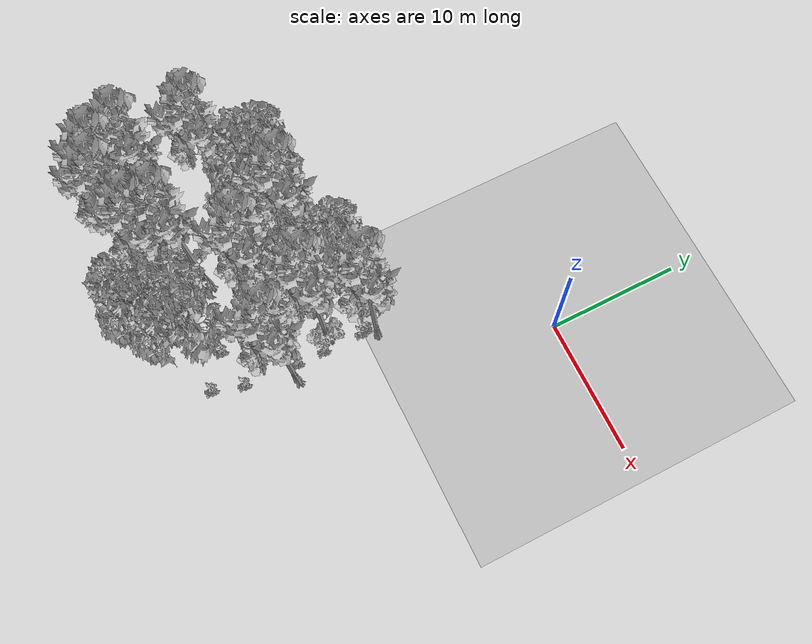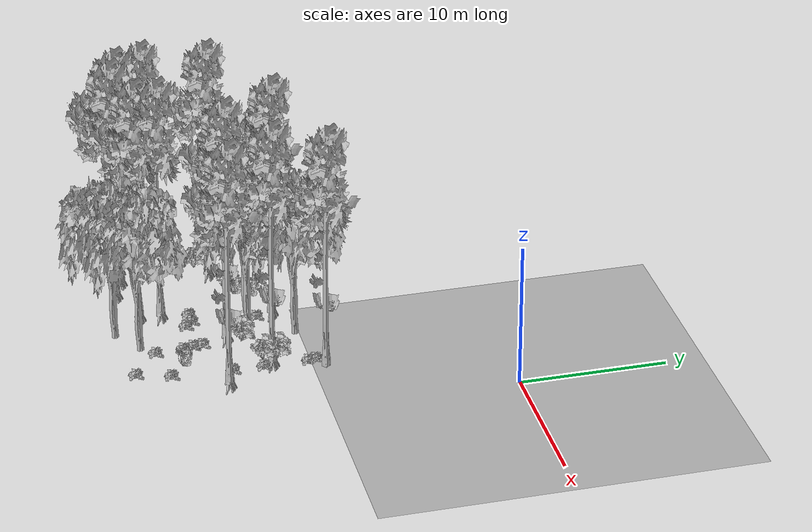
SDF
<sdf version="1.7">
 <world name="default">
  <model name="ground_plane">
   <static>1</static>
   <link name="link">
    <collision name="collision">
     <pose>-50 0 0 0 -0 0</pose>
     <geometry><plane><normal>0 0 1</normal><size>80 80</size></plane></geometry>
     <surface><contact><ode><min_depth>0.01</min_depth><max_vel>0</max_vel></ode></contact></surface>
    </collision>
    <visual name="grass">
     <cast_shadows>0</cast_shadows>
     <geometry>
      <mesh>
       <scale>0.46714285714285714 0.46714285714285714 0.1</scale>
       <uri>file://grass_plane/meshes/grass_plane.dae</uri>
      </mesh>
     </geometry>
    </visual>
   </link>
  </model>
  <model name="Tree 1">
   <static>1</static>
   <pose>-20.00631564012497 -21.219108205197983 0 1.57079 -0 0</pose>
   <link name="link">
    <collision name="collision">
     <geometry><mesh><scale>3.5 5 3.5</scale><uri>model://tree_9/meshes/tree_9.obj</uri></mesh></geometry>
    </collision>
    <visual name="visual">
     <geometry><mesh><scale>3.5 5 3.5</scale><uri>model://tree_9/meshes/tree_9.obj</uri></mesh></geometry>
    </visual>
   </link>
  </model>
  <model name="Tree 27">
   <static>1</static>
   <pose>-19.1331456412655 -16.951237500059335 0 1.57079 -0 0</pose>
   <link name="link">
    <collision name="collision">
     <geometry><mesh><scale>3.5 5 3.5</scale><uri>model://tree_9/meshes/tree_9.obj</uri></mesh></geometry>
    </collision>
    <visual name="visual">
     <geometry><mesh><scale>3.5 5 3.5</scale><uri>model://tree_9/meshes/tree_9.obj</uri></mesh></geometry>
    </visual>
   </link>
  </model>
  <model name="Tree 63">
   <static>1</static>
   <pose>-18.331179288431503 -14.462278779651943 0 1.57079 -0 0</pose>
   <link name="link">
    <collision name="collision">
     <geometry><mesh><scale>3.5 5 3.5</scale><uri>model://tree_2/meshes/tree_2.obj</uri></mesh></geometry>
    </collision>
    <visual name="visual">
     <geometry><mesh><scale>3.5 5 3.5</scale><uri>model://tree_2/meshes/tree_2.obj</uri></mesh></geometry>
    </visual>
   </link>
  </model>
  <model name="Tree 120">
   <static>1</static>
   <pose>-19.40444685977066 -23.045255767397617 0 1.57079 -0 0</pose>
   <link name="link">
    <collision name="collision">
     <geometry><mesh><scale>3.5 5 3.5</scale><uri>model://tree_9/meshes/tree_9.obj</uri></mesh></geometry>
    </collision>
    <visual name="visual">
     <geometry><mesh><scale>3.5 5 3.5</scale><uri>model://tree_9/meshes/tree_9.obj</uri></mesh></geometry>
    </visual>
   </link>
  </model>
  <model name="Tree 126">
   <static>1</static>
   <pose>-5.126110389023971 -11.750447258831258 0 1.57079 -0 0</pose>
   <link name="link">
    <collision name="collision">
     <geometry><mesh><scale>3.5 5 3.5</scale><uri>model://tree_9/meshes/tree_9.obj</uri></mesh></geometry>
    </collision>
    <visual name="visual">
     <geometry><mesh><scale>3.5 5 3.5</scale><uri>model://tree_9/meshes/tree_9.obj</uri></mesh></geometry>
    </visual>
   </link>
  </model>
  <model name="Tree 169">
   <static>1</static>
   <pose>-4.711539484235999 -18.272346032408073 0 1.57079 -0 0</pose>
   <link name="link">
    <collision name="collision">
     <geometry><mesh><scale>3.5 5 3.5</scale><uri>model://tree_9/meshes/tree_9.obj</uri></mesh></geometry>
    </collision>
    <visual name="visual">
     <geometry><mesh><scale>3.5 5 3.5</scale><uri>model://tree_9/meshes/tree_9.obj</uri></mesh></geometry>
    </visual>
   </link>
  </model>
  <model name="Tree 262">
   <static>1</static>
   <pose>-12.054391189150735 -24.639978947453052 0 1.57079 -0 0</pose>
   <link name="link">
    <collision name="collision">
     <geometry><mesh><scale>3.5 5 3.5</scale><uri>model://tree_2/meshes/tree_2.obj</uri></mesh></geometry>
    </collision>
    <visual name="visual">
     <geometry><mesh><scale>3.5 5 3.5</scale><uri>model://tree_2/meshes/tree_2.obj</uri></mesh></geometry>
    </visual>
   </link>
  </model>
  <model name="Tree 324">
   <static>1</static>
   <pose>-11.117634274865434 -15.77838731107424 0 1.57079 -0 0</pose>
   <link name="link">
    <collision name="collision">
     <geometry><mesh><scale>3.5 5 3.5</scale><uri>model://tree_2/meshes/tree_2.obj</uri></mesh></geometry>
    </collision>
    <visual name="visual">
     <geometry><mesh><scale>3.5 5 3.5</scale><uri>model://tree_2/meshes/tree_2.obj</uri></mesh></geometry>
    </visual>
   </link>
  </model>
  <model name="Tree 341">
   <static>1</static>
   <pose>-9.671992755689757 -12.887060885942184 0 1.57079 -0 0</pose>
   <link name="link">
    <collision name="collision">
     <geometry><mesh><scale>3.5 5 3.5</scale><uri>model://tree_2/meshes/tree_2.obj</uri></mesh></geometry>
    </collision>
    <visual name="visual">
     <geometry><mesh><scale>3.5 5 3.5</scale><uri>model://tree_2/meshes/tree_2.obj</uri></mesh></geometry>
    </visual>
   </link>
  </model>
  <model name="Tree 348">
   <static>1</static>
   <pose>-6.615893319463588 -15.019487388989205 0 1.57079 -0 0</pose>
   <link name="link">
    <collision name="collision">
     <geometry><mesh><scale>3.5 5 3.5</scale><uri>model://tree_9/meshes/tree_9.obj</uri></mesh></geometry>
    </collision>
    <visual name="visual">
     <geometry><mesh><scale>3.5 5 3.5</scale><uri>model://tree_9/meshes/tree_9.obj</uri></mesh></geometry>
    </visual>
   </link>
  </model>
  <model name="Tree 382">
   <static>1</static>
   <pose>-17.738214821691173 -23.631381395886137 0 1.57079 -0 0</pose>
   <link name="link">
    <collision name="collision">
     <geometry><mesh><scale>3.5 5 3.5</scale><uri>model://tree_9/meshes/tree_9.obj</uri></mesh></geometry>
    </collision>
    <visual name="visual">
     <geometry><mesh><scale>3.5 5 3.5</scale><uri>model://tree_9/meshes/tree_9.obj</uri></mesh></geometry>
    </visual>
   </link>
  </model>
  <model name="Tree 391">
   <static>1</static>
   <pose>-14.477757776241464 -22.57421844494754 0 1.57079 -0 0</pose>
   <link name="link">
    <collision name="collision">
     <geometry><mesh><scale>3.5 5 3.5</scale><uri>model://tree_9/meshes/tree_9.obj</uri></mesh></geometry>
    </collision>
    <visual name="visual">
     <geometry><mesh><scale>3.5 5 3.5</scale><uri>model://tree_9/meshes/tree_9.obj</uri></mesh></geometry>
    </visual>
   </link>
  </model>
  <model name="Tree 408">
   <static>1</static>
   <pose>-10.041415371589757 -23.282742627854933 0 1.57079 -0 0</pose>
   <link name="link">
    <collision name="collision">
     <geometry><mesh><scale>3.5 5 3.5</scale><uri>model://tree_2/meshes/tree_2.obj</uri></mesh></geometry>
    </collision>
    <visual name="visual">
     <geometry><mesh><scale>3.5 5 3.5</scale><uri>model://tree_2/meshes/tree_2.obj</uri></mesh></geometry>
    </visual>
   </link>
  </model>
  <model name="Tree 442">
   <static>1</static>
   <pose>-12.966087762789474 -13.750367076997676 0 1.57079 -0 0</pose>
   <link name="link">
    <collision name="collision">
     <geometry><mesh><scale>3.5 5 3.5</scale><uri>model://tree_9/meshes/tree_9.obj</uri></mesh></geometry>
    </collision>
    <visual name="visual">
     <geometry><mesh><scale>3.5 5 3.5</scale><uri>model://tree_9/meshes/tree_9.obj</uri></mesh></geometry>
    </visual>
   </link>
  </model>
  <model name="Tree 467">
   <static>1</static>
   <pose>-10.46107320058453 -17.368062570996024 0 1.57079 -0 0</pose>
   <link name="link">
    <collision name="collision">
     <geometry><mesh><scale>3.5 5 3.5</scale><uri>model://tree_9/meshes/tree_9.obj</uri></mesh></geometry>
    </collision>
    <visual name="visual">
     <geometry><mesh><scale>3.5 5 3.5</scale><uri>model://tree_9/meshes/tree_9.obj</uri></mesh></geometry>
    </visual>
   </link>
  </model>
  <model name="Tree 558">
   <static>1</static>
   <pose>-14.334939608907113 -21.119182295263926 0 1.57079 -0 0</pose>
   <link name="link">
    <collision name="collision">
     <geometry><mesh><scale>3.5 5 3.5</scale><uri>model://tree_9/meshes/tree_9.obj</uri></mesh></geometry>
    </collision>
    <visual name="visual">
     <geometry><mesh><scale>3.5 5 3.5</scale><uri>model://tree_9/meshes/tree_9.obj</uri></mesh></geometry>
    </visual>
   </link>
  </model>
  <model name="Tree 602">
   <static>1</static>
   <pose>-13.089763365560497 -15.532223975817587 0 1.57079 -0 0</pose>
   <link name="link">
    <collision name="collision">
     <geometry><mesh><scale>3.5 5 3.5</scale><uri>model://tree_2/meshes/tree_2.obj</uri></mesh></geometry>
    </collision>
    <visual name="visual">
     <geometry><mesh><scale>3.5 5 3.5</scale><uri>model://tree_2/meshes/tree_2.obj</uri></mesh></geometry>
    </visual>
   </link>
  </model>
  <model name="Bush 18">
   <static>1</static>
   <pose>-6.011913121096647 -15.74745787451399 0 1.57079 -0 0</pose>
   <link name="link">
    <collision name="collision">
     <geometry><mesh><scale>2 2 2</scale><uri>model://bush_2/meshes/bush_2.obj</uri></mesh></geometry>
     <surface><contact><collide_without_contact>false</collide_without_contact></contact></surface>
    </collision>
    <visual name="visual">
     <geometry><mesh><scale>2 2 2</scale><uri>model://bush_2/meshes/bush_2.obj</uri></mesh></geometry>
    </visual>
   </link>
  </model>
  <model name="Bush 54">
   <static>1</static>
   <pose>-6.098171566266629 -12.262999140977193 0 1.57079 -0 0</pose>
   <link name="link">
    <collision name="collision">
     <geometry><mesh><scale>2 2 2</scale><uri>model://bush_2/meshes/bush_2.obj</uri></mesh></geometry>
     <surface><contact><collide_without_contact>false</collide_without_contact></contact></surface>
    </collision>
    <visual name="visual">
     <geometry><mesh><scale>2 2 2</scale><uri>model://bush_2/meshes/bush_2.obj</uri></mesh></geometry>
    </visual>
   </link>
  </model>
  <model name="Bush 60">
   <static>1</static>
   <pose>-6.79024442990935 -14.653698839174485 0 1.57079 -0 0</pose>
   <link name="link">
    <collision name="collision">
     <geometry><mesh><scale>2 2 2</scale><uri>model://bush_1/meshes/bush_1.obj</uri></mesh></geometry>
     <surface><contact><collide_without_contact>false</collide_without_contact></contact></surface>
    </collision>
    <visual name="visual">
     <geometry><mesh><scale>2 2 2</scale><uri>model://bush_1/meshes/bush_1.obj</uri></mesh></geometry>
    </visual>
   </link>
  </model>
  <model name="Bush 94">
   <static>1</static>
   <pose>-12.175799770196416 -19.811032138907798 0 1.57079 -0 0</pose>
   <link name="link">
    <collision name="collision">
     <geometry><mesh><scale>2 2 2</scale><uri>model://bush_2/meshes/bush_2.obj</uri></mesh></geometry>
     <surface><contact><collide_without_contact>false</collide_without_contact></contact></surface>
    </collision>
    <visual name="visual">
     <geometry><mesh><scale>2 2 2</scale><uri>model://bush_2/meshes/bush_2.obj</uri></mesh></geometry>
    </visual>
   </link>
  </model>
  <model name="Bush 101">
   <static>1</static>
   <pose>-6.942938106580435 -24.097288830823285 0 1.57079 -0 0</pose>
   <link name="link">
    <collision name="collision">
     <geometry><mesh><scale>2 2 2</scale><uri>model://bush_2/meshes/bush_2.obj</uri></mesh></geometry>
     <surface><contact><collide_without_contact>false</collide_without_contact></contact></surface>
    </collision>
    <visual name="visual">
     <geometry><mesh><scale>2 2 2</scale><uri>model://bush_2/meshes/bush_2.obj</uri></mesh></geometry>
    </visual>
   </link>
  </model>
  <model name="Bush 109">
   <static>1</static>
   <pose>-13.616135785938159 -13.770624110103373 0 1.57079 -0 0</pose>
   <link name="link">
    <collision name="collision">
     <geometry><mesh><scale>2 2 2</scale><uri>model://bush_5/meshes/bush_5.obj</uri></mesh></geometry>
     <surface><contact><collide_without_contact>false</collide_without_contact></contact></surface>
    </collision>
    <visual name="visual">
     <geometry><mesh><scale>2 2 2</scale><uri>model://bush_5/meshes/bush_5.obj</uri></mesh></geometry>
    </visual>
   </link>
  </model>
  <model name="Bush 115">
   <static>1</static>
   <pose>-15.724191650417037 -15.82743938579619 0 1.57079 -0 0</pose>
   <link name="link">
    <collision name="collision">
     <geometry><mesh><scale>2 2 2</scale><uri>model://bush_4/meshes/bush_4.obj</uri></mesh></geometry>
     <surface><contact><collide_without_contact>false</collide_without_contact></contact></surface>
    </collision>
    <visual name="visual">
     <geometry><mesh><scale>2 2 2</scale><uri>model://bush_4/meshes/bush_4.obj</uri></mesh></geometry>
    </visual>
   </link>
  </model>
  <model name="Bush 192">
   <static>1</static>
   <pose>-12.311918744939035 -14.97467982148904 0 1.57079 -0 0</pose>
   <link name="link">
    <collision name="collision">
     <geometry><mesh><scale>2 2 2</scale><uri>model://bush_2/meshes/bush_2.obj</uri></mesh></geometry>
     <surface><contact><collide_without_contact>false</collide_without_contact></contact></surface>
    </collision>
    <visual name="visual">
     <geometry><mesh><scale>2 2 2</scale><uri>model://bush_2/meshes/bush_2.obj</uri></mesh></geometry>
    </visual>
   </link>
  </model>
  <model name="Bush 200">
   <static>1</static>
   <pose>-16.9677104417569 -13.844034718685805 0 1.57079 -0 0</pose>
   <link name="link">
    <collision name="collision">
     <geometry><mesh><scale>2 2 2</scale><uri>model://bush_2/meshes/bush_2.obj</uri></mesh></geometry>
     <surface><contact><collide_without_contact>false</collide_without_contact></contact></surface>
    </collision>
    <visual name="visual">
     <geometry><mesh><scale>2 2 2</scale><uri>model://bush_2/meshes/bush_2.obj</uri></mesh></geometry>
    </visual>
   </link>
  </model>
  <model name="Bush 214">
   <static>1</static>
   <pose>-17.62767114771472 -15.51714024568902 0 1.57079 -0 0</pose>
   <link name="link">
    <collision name="collision">
     <geometry><mesh><scale>2 2 2</scale><uri>model://bush_2/meshes/bush_2.obj</uri></mesh></geometry>
     <surface><contact><collide_without_contact>false</collide_without_contact></contact></surface>
    </collision>
    <visual name="visual">
     <geometry><mesh><scale>2 2 2</scale><uri>model://bush_2/meshes/bush_2.obj</uri></mesh></geometry>
    </visual>
   </link>
  </model>
  <model name="Bush 229">
   <static>1</static>
   <pose>-5.977292100528345 -12.756499090033422 0 1.57079 -0 0</pose>
   <link name="link">
    <collision name="collision">
     <geometry><mesh><scale>2 2 2</scale><uri>model://bush_2/meshes/bush_2.obj</uri></mesh></geometry>
     <surface><contact><collide_without_contact>false</collide_without_contact></contact></surface>
    </collision>
    <visual name="visual">
     <geometry><mesh><scale>2 2 2</scale><uri>model://bush_2/meshes/bush_2.obj</uri></mesh></geometry>
    </visual>
   </link>
  </model>
  <model name="Bush 231">
   <static>1</static>
   <pose>-16.669487118045684 -16.307209298645127 0 1.57079 -0 0</pose>
   <link name="link">
    <collision name="collision">
     <geometry><mesh><scale>2 2 2</scale><uri>model://bush_4/meshes/bush_4.obj</uri></mesh></geometry>
     <surface><contact><collide_without_contact>false</collide_without_contact></contact></surface>
    </collision>
    <visual name="visual">
     <geometry><mesh><scale>2 2 2</scale><uri>model://bush_4/meshes/bush_4.obj</uri></mesh></geometry>
    </visual>
   </link>
  </model>
  <model name="Bush 240">
   <static>1</static>
   <pose>-7.396695837416036 -20.81493334468699 0 1.57079 -0 0</pose>
   <link name="link">
    <collision name="collision">
     <geometry><mesh><scale>2 2 2</scale><uri>model://bush_4/meshes/bush_4.obj</uri></mesh></geometry>
     <surface><contact><collide_without_contact>false</collide_without_contact></contact></surface>
    </collision>
    <visual name="visual">
     <geometry><mesh><scale>2 2 2</scale><uri>model://bush_4/meshes/bush_4.obj</uri></mesh></geometry>
    </visual>
   </link>
  </model>
  <model name="Bush 264">
   <static>1</static>
   <pose>-13.634368309178441 -19.35527132510737 0 1.57079 -0 0</pose>
   <link name="link">
    <collision name="collision">
     <geometry><mesh><scale>2 2 2</scale><uri>model://bush_2/meshes/bush_2.obj</uri></mesh></geometry>
     <surface><contact><collide_without_contact>false</collide_without_contact></contact></surface>
    </collision>
    <visual name="visual">
     <geometry><mesh><scale>2 2 2</scale><uri>model://bush_2/meshes/bush_2.obj</uri></mesh></geometry>
    </visual>
   </link>
  </model>
  <model name="Bush 278">
   <static>1</static>
   <pose>-6.008626690409045 -17.823010748092123 0 1.57079 -0 0</pose>
   <link name="link">
    <collision name="collision">
     <geometry><mesh><scale>2 2 2</scale><uri>model://bush_2/meshes/bush_2.obj</uri></mesh></geometry>
     <surface><contact><collide_without_contact>false</collide_without_contact></contact></surface>
    </collision>
    <visual name="visual">
     <geometry><mesh><scale>2 2 2</scale><uri>model://bush_2/meshes/bush_2.obj</uri></mesh></geometry>
    </visual>
   </link>
  </model>
  <model name="Bush 358">
   <static>1</static>
   <pose>-9.620189754776632 -19.169257479278407 0 1.57079 -0 0</pose>
   <link name="link">
    <collision name="collision">
     <geometry><mesh><scale>2 2 2</scale><uri>model://bush_2/meshes/bush_2.obj</uri></mesh></geometry>
     <surface><contact><collide_without_contact>false</collide_without_contact></contact></surface>
    </collision>
    <visual name="visual">
     <geometry><mesh><scale>2 2 2</scale><uri>model://bush_2/meshes/bush_2.obj</uri></mesh></geometry>
    </visual>
   </link>
  </model>
  <model name="Bush 367">
   <static>1</static>
   <pose>-18.885960952518296 -23.253582614504822 0 1.57079 -0 0</pose>
   <link name="link">
    <collision name="collision">
     <geometry><mesh><scale>2 2 2</scale><uri>model://bush_0/meshes/bush_0.obj</uri></mesh></geometry>
     <surface><contact><collide_without_contact>false</collide_without_contact></contact></surface>
    </collision>
    <visual name="visual">
     <geometry><mesh><scale>2 2 2</scale><uri>model://bush_0/meshes/bush_0.obj</uri></mesh></geometry>
    </visual>
   </link>
  </model>
  <model name="Bush 444">
   <static>1</static>
   <pose>-12.714102974862648 -19.322262634507197 0 1.57079 -0 0</pose>
   <link name="link">
    <collision name="collision">
     <geometry><mesh><scale>2 2 2</scale><uri>model://bush_2/meshes/bush_2.obj</uri></mesh></geometry>
     <surface><contact><collide_without_contact>false</collide_without_contact></contact></surface>
    </collision>
    <visual name="visual">
     <geometry><mesh><scale>2 2 2</scale><uri>model://bush_2/meshes/bush_2.obj</uri></mesh></geometry>
    </visual>
   </link>
  </model>
  <model name="Bush 451">
   <static>1</static>
   <pose>-19.85815457604955 -17.840948227267084 0 1.57079 -0 0</pose>
   <link name="link">
    <collision name="collision">
     <geometry><mesh><scale>2 2 2</scale><uri>model://bush_1/meshes/bush_1.obj</uri></mesh></geometry>
     <surface><contact><collide_without_contact>false</collide_without_contact></contact></surface>
    </collision>
    <visual name="visual">
     <geometry><mesh><scale>2 2 2</scale><uri>model://bush_1/meshes/bush_1.obj</uri></mesh></geometry>
    </visual>
   </link>
  </model>
  <model name="Bush 454">
   <static>1</static>
   <pose>-6.26994630942977 -21.842586021860903 0 1.57079 -0 0</pose>
   <link name="link">
    <collision name="collision">
     <geometry><mesh><scale>2 2 2</scale><uri>model://bush_2/meshes/bush_2.obj</uri></mesh></geometry>
     <surface><contact><collide_without_contact>false</collide_without_contact></contact></surface>
    </collision>
    <visual name="visual">
     <geometry><mesh><scale>2 2 2</scale><uri>model://bush_2/meshes/bush_2.obj</uri></mesh></geometry>
    </visual>
   </link>
  </model>
  <model name="Bush 455">
   <static>1</static>
   <pose>-9.302162981543177 -22.386026530955895 0 1.57079 -0 0</pose>
   <link name="link">
    <collision name="collision">
     <geometry><mesh><scale>2 2 2</scale><uri>model://bush_2/meshes/bush_2.obj</uri></mesh></geometry>
     <surface><contact><collide_without_contact>false</collide_without_contact></contact></surface>
    </collision>
    <visual name="visual">
     <geometry><mesh><scale>2 2 2</scale><uri>model://bush_2/meshes/bush_2.obj</uri></mesh></geometry>
    </visual>
   </link>
  </model>
  <model name="Bush 459">
   <static>1</static>
   <pose>-6.79538225783671 -15.654270433904614 0 1.57079 -0 0</pose>
   <link name="link">
    <collision name="collision">
     <geometry><mesh><scale>2 2 2</scale><uri>model://bush_1/meshes/bush_1.obj</uri></mesh></geometry>
     <surface><contact><collide_without_contact>false</collide_without_contact></contact></surface>
    </collision>
    <visual name="visual">
     <geometry><mesh><scale>2 2 2</scale><uri>model://bush_1/meshes/bush_1.obj</uri></mesh></geometry>
    </visual>
   </link>
  </model>
  <model name="Bush 463">
   <static>1</static>
   <pose>-9.570568531341422 -19.820636259238267 0 1.57079 -0 0</pose>
   <link name="link">
    <collision name="collision">
     <geometry><mesh><scale>2 2 2</scale><uri>model://bush_2/meshes/bush_2.obj</uri></mesh></geometry>
     <surface><contact><collide_without_contact>false</collide_without_contact></contact></surface>
    </collision>
    <visual name="visual">
     <geometry><mesh><scale>2 2 2</scale><uri>model://bush_2/meshes/bush_2.obj</uri></mesh></geometry>
    </visual>
   </link>
  </model>
  <model name="Bush 504">
   <static>1</static>
   <pose>-10.149865475406614 -16.047727438325516 0 1.57079 -0 0</pose>
   <link name="link">
    <collision name="collision">
     <geometry><mesh><scale>2 2 2</scale><uri>model://bush_2/meshes/bush_2.obj</uri></mesh></geometry>
     <surface><contact><collide_without_contact>false</collide_without_contact></contact></surface>
    </collision>
    <visual name="visual">
     <geometry><mesh><scale>2 2 2</scale><uri>model://bush_2/meshes/bush_2.obj</uri></mesh></geometry>
    </visual>
   </link>
  </model>
  <model name="Bush 538">
   <static>1</static>
   <pose>-20.053622652677184 -18.413026637890635 0 1.57079 -0 0</pose>
   <link name="link">
    <collision name="collision">
     <geometry><mesh><scale>2 2 2</scale><uri>model://bush_0/meshes/bush_0.obj</uri></mesh></geometry>
     <surface><contact><collide_without_contact>false</collide_without_contact></contact></surface>
    </collision>
    <visual name="visual">
     <geometry><mesh><scale>2 2 2</scale><uri>model://bush_0/meshes/bush_0.obj</uri></mesh></geometry>
    </visual>
   </link>
  </model>
  <model name="Bush 539">
   <static>1</static>
   <pose>-9.385997018898024 -20.499537271932986 0 1.57079 -0 0</pose>
   <link name="link">
    <collision name="collision">
     <geometry><mesh><scale>2 2 2</scale><uri>model://bush_2/meshes/bush_2.obj</uri></mesh></geometry>
     <surface><contact><collide_without_contact>false</collide_without_contact></contact></surface>
    </collision>
    <visual name="visual">
     <geometry><mesh><scale>2 2 2</scale><uri>model://bush_2/meshes/bush_2.obj</uri></mesh></geometry>
    </visual>
   </link>
  </model>
  <model name="Bush 544">
   <static>1</static>
   <pose>-9.47517395353223 -16.547075379411112 0 1.57079 -0 0</pose>
   <link name="link">
    <collision name="collision">
     <geometry><mesh><scale>2 2 2</scale><uri>model://bush_1/meshes/bush_1.obj</uri></mesh></geometry>
     <surface><contact><collide_without_contact>false</collide_without_contact></contact></surface>
    </collision>
    <visual name="visual">
     <geometry><mesh><scale>2 2 2</scale><uri>model://bush_1/meshes/bush_1.obj</uri></mesh></geometry>
    </visual>
   </link>
  </model>
  <model name="Bush 628">
   <static>1</static>
   <pose>-15.141640449011945 -14.804298374720311 0 1.57079 -0 0</pose>
   <link name="link">
    <collision name="collision">
     <geometry><mesh><scale>2 2 2</scale><uri>model://bush_4/meshes/bush_4.obj</uri></mesh></geometry>
     <surface><contact><collide_without_contact>false</collide_without_contact></contact></surface>
    </collision>
    <visual name="visual">
     <geometry><mesh><scale>2 2 2</scale><uri>model://bush_4/meshes/bush_4.obj</uri></mesh></geometry>
    </visual>
   </link>
  </model>
 </world>
</sdf>
